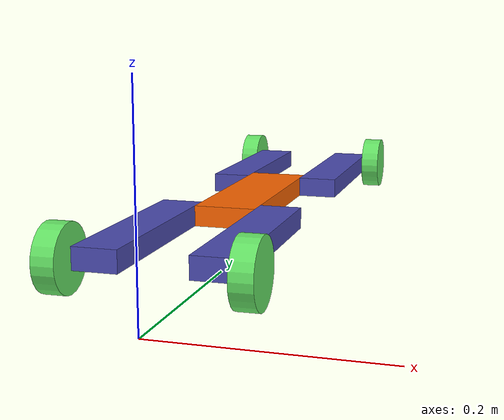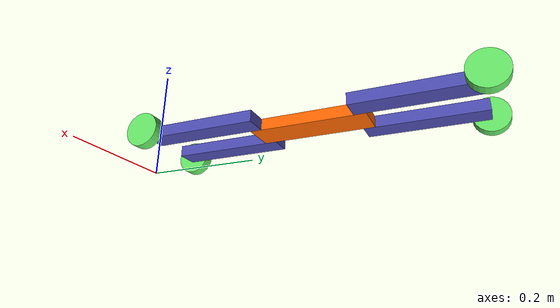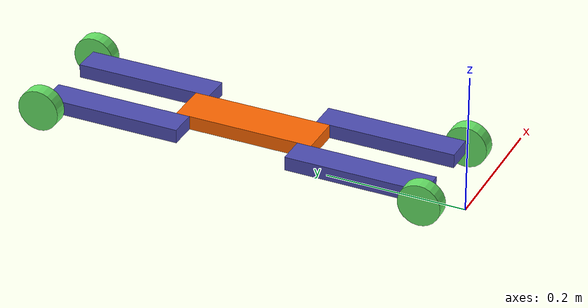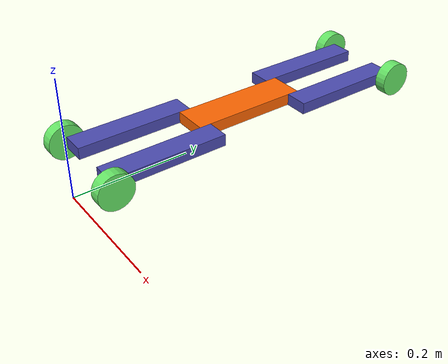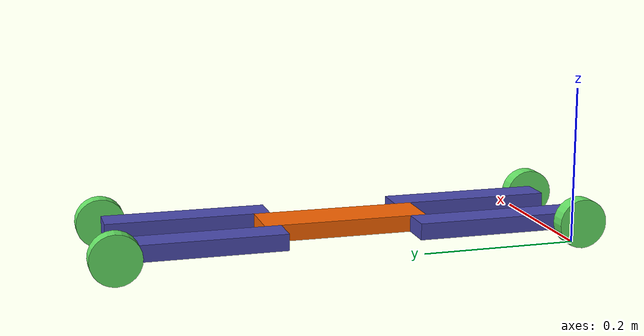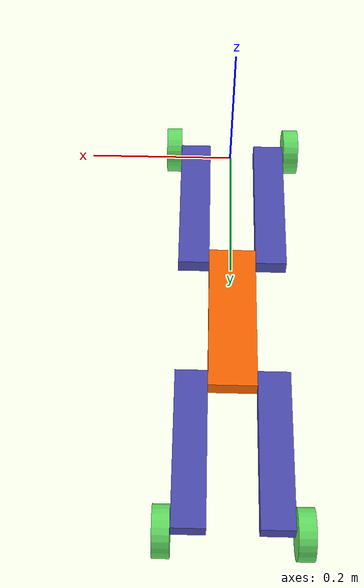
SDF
<?xml version='1.0'?>
<sdf version='1.6'>
  <model name='rover'>
    <pose frame=''>0 0 0.05 -1.570796327 0 0</pose>
    <link name='left_leg'>
      <inertial>
        <mass>0.12</mass>
        <inertia>
          <ixx>0.000404</ixx>
          <ixy>0</ixy>
          <ixz>0</ixz>
          <iyy>0.000416</iyy>
          <iyz>0</iyz>
          <izz>2e-05</izz>
        </inertia>
        <pose frame=''>0 0 0 0 -0 0</pose>
      </inertial>
      <pose frame=''>-0.05 0 0.13 0 -0 0</pose>
      <gravity>1</gravity>
      <self_collide>0</self_collide>
      <kinematic>0</kinematic>
      <enable_wind>0</enable_wind>
      <visual name='visual'>
        <pose frame=''>0 0 0 0 -0 0</pose>
        <geometry>
          <box>
            <size>0.04 0.02 0.2</size>
          </box>
        </geometry>
        <material>
          <lighting>1</lighting>
          <script>
            <uri>file://media/materials/scripts/gazebo.material</uri>
            <name>Gazebo/Grey</name>
          </script>
          <shader type='vertex'>
            <normal_map>__default__</normal_map>
          </shader>
          <ambient>0.3 0.3 0.7 1</ambient>
          <diffuse>0.7 0.7 0.7 1</diffuse>
          <specular>0.01 0.01 0.01 1</specular>
          <emissive>0 0 0 1</emissive>
        </material>
        <transparency>0</transparency>
        <cast_shadows>1</cast_shadows>
      </visual>
      <collision name='collision'>
        <laser_retro>0</laser_retro>
        <max_contacts>10</max_contacts>
        <pose frame=''>0 0 0 0 -0 0</pose>
        <geometry>
          <box>
            <size>0.04 0.02 0.2</size>
          </box>
        </geometry>
        <surface>
          <friction>
            <ode>
              <mu>1</mu>
              <mu2>1</mu2>
              <fdir1>0 0 0</fdir1>
              <slip1>0</slip1>
              <slip2>0</slip2>
            </ode>
            <torsional>
              <coefficient>1</coefficient>
              <patch_radius>0</patch_radius>
              <surface_radius>0</surface_radius>
              <use_patch_radius>1</use_patch_radius>
              <ode>
                <slip>0</slip>
              </ode>
            </torsional>
          </friction>
          <bounce>
            <restitution_coefficient>0</restitution_coefficient>
            <threshold>1e+06</threshold>
          </bounce>
          <contact>
            <collide_without_contact>0</collide_without_contact>
            <collide_without_contact_bitmask>1</collide_without_contact_bitmask>
            <collide_bitmask>1</collide_bitmask>
            <ode>
              <soft_cfm>0</soft_cfm>
              <soft_erp>0.2</soft_erp>
              <kp>1e+13</kp>
              <kd>1</kd>
              <max_vel>0.01</max_vel>
              <min_depth>0</min_depth>
            </ode>
            <bullet>
              <split_impulse>1</split_impulse>
              <split_impulse_penetration_threshold>-0.01</split_impulse_penetration_threshold>
              <soft_cfm>0</soft_cfm>
              <soft_erp>0.2</soft_erp>
              <kp>1e+13</kp>
              <kd>1</kd>
            </bullet>
          </contact>
        </surface>
      </collision>
    </link>
    <link name='body'>
      <battery name="linear_battery">
        <voltage>12.592</voltage>
      </battery>
      <inertial>
        <mass>0.05</mass>
        <inertia>
          <ixx>0.00016833</ixx>
          <ixy>0</ixy>
          <ixz>0</ixz>
          <iyy>0.00018167</iyy>
          <iyz>0</iyz>
          <izz>1.667e-05</izz>
        </inertia>
        <pose frame=''>0 0 0 0 -0 0</pose>
      </inertial>
      <pose frame=''>0 0 0.31 0 0 0</pose>
      <gravity>1</gravity>
      <self_collide>0</self_collide>
      <kinematic>0</kinematic>
      <enable_wind>0</enable_wind>
      <visual name='visual'>
        <pose frame=''>0 0 0 0 -0 0</pose>
        <geometry>
          <box>
            <size>0.06 0.02 0.2</size>
          </box>
        </geometry>
        <material>
          <lighting>1</lighting>
          <script>
            <uri>file://media/materials/scripts/gazebo.material</uri>
            <name>Gazebo/Grey</name>
          </script>
          <shader type='vertex'>
            <normal_map>__default__</normal_map>
          </shader>
          <ambient>1 0.4 0 1</ambient>
          <diffuse>0.7 0.7 0.7 1</diffuse>
          <specular>0.01 0.01 0.01 1</specular>
          <emissive>0 0 0 1</emissive>
        </material>
        <transparency>0</transparency>
        <cast_shadows>1</cast_shadows>
      </visual>
      <collision name='collision'>
        <laser_retro>0</laser_retro>
        <max_contacts>10</max_contacts>
        <pose frame=''>0 0 0 0 -0 0</pose>
        <geometry>
          <box>
            <size>0.06 0.02 0.2</size>
          </box>
        </geometry>
        <surface>
          <friction>
            <ode>
              <mu>1</mu>
              <mu2>1</mu2>
              <fdir1>0 0 0</fdir1>
              <slip1>0</slip1>
              <slip2>0</slip2>
            </ode>
            <torsional>
              <coefficient>1</coefficient>
              <patch_radius>0</patch_radius>
              <surface_radius>0</surface_radius>
              <use_patch_radius>1</use_patch_radius>
              <ode>
                <slip>0</slip>
              </ode>
            </torsional>
          </friction>
          <bounce>
            <restitution_coefficient>0</restitution_coefficient>
            <threshold>1e+06</threshold>
          </bounce>
          <contact>
            <collide_without_contact>0</collide_without_contact>
            <collide_without_contact_bitmask>1</collide_without_contact_bitmask>
            <collide_bitmask>1</collide_bitmask>
            <ode>
              <soft_cfm>0</soft_cfm>
              <soft_erp>0.2</soft_erp>
              <kp>1e+13</kp>
              <kd>1</kd>
              <max_vel>0.01</max_vel>
              <min_depth>0</min_depth>
            </ode>
            <bullet>
              <split_impulse>1</split_impulse>
              <split_impulse_penetration_threshold>-0.01</split_impulse_penetration_threshold>
              <soft_cfm>0</soft_cfm>
              <soft_erp>0.2</soft_erp>
              <kp>1e+13</kp>
              <kd>1</kd>
            </bullet>
          </contact>
        </surface>
      </collision>
    </link>
    <link name='left_arm'>
      <inertial>
        <mass>0.12</mass>
        <inertia>
          <ixx>0.000404</ixx>
          <ixy>0</ixy>
          <ixz>0</ixz>
          <iyy>0.000416</iyy>
          <iyz>0</iyz>
          <izz>2e-05</izz>
        </inertia>
        <pose frame=''>0 0 0 0 -0 0</pose>
      </inertial>
      <pose frame=''>-0.05 0 0.49 0 -0 0</pose>
      <gravity>1</gravity>
      <self_collide>0</self_collide>
      <kinematic>0</kinematic>
      <enable_wind>0</enable_wind>
      <visual name='visual'>
        <pose frame=''>0 0 0 0 -0 0</pose>
        <geometry>
          <box>
            <size>0.04 0.02 0.2</size>
          </box>
        </geometry>
        <material>
          <lighting>1</lighting>
          <script>
            <uri>file://media/materials/scripts/gazebo.material</uri>
            <name>Gazebo/Grey</name>
          </script>
          <shader type='vertex'>
            <normal_map>__default__</normal_map>
          </shader>
          <ambient>0.3 0.3 0.7 1</ambient>
          <diffuse>0.7 0.7 0.7 1</diffuse>
          <specular>0.01 0.01 0.01 1</specular>
          <emissive>0 0 0 1</emissive>
        </material>
        <transparency>0</transparency>
        <cast_shadows>1</cast_shadows>
      </visual>
      <collision name='collision'>
        <laser_retro>0</laser_retro>
        <max_contacts>10</max_contacts>
        <pose frame=''>0 0 0 0 -0 0</pose>
        <geometry>
          <box>
            <size>0.04 0.02 0.2</size>
          </box>
        </geometry>
        <surface>
          <friction>
            <ode>
              <mu>1</mu>
              <mu2>1</mu2>
              <fdir1>0 0 0</fdir1>
              <slip1>0</slip1>
              <slip2>0</slip2>
            </ode>
            <torsional>
              <coefficient>1</coefficient>
              <patch_radius>0</patch_radius>
              <surface_radius>0</surface_radius>
              <use_patch_radius>1</use_patch_radius>
              <ode>
                <slip>0</slip>
              </ode>
            </torsional>
          </friction>
          <bounce>
            <restitution_coefficient>0</restitution_coefficient>
            <threshold>1e+06</threshold>
          </bounce>
          <contact>
            <collide_without_contact>0</collide_without_contact>
            <collide_without_contact_bitmask>1</collide_without_contact_bitmask>
            <collide_bitmask>1</collide_bitmask>
            <ode>
              <soft_cfm>0</soft_cfm>
              <soft_erp>0.2</soft_erp>
              <kp>1e+13</kp>
              <kd>1</kd>
              <max_vel>0.01</max_vel>
              <min_depth>0</min_depth>
            </ode>
            <bullet>
              <split_impulse>1</split_impulse>
              <split_impulse_penetration_threshold>-0.01</split_impulse_penetration_threshold>
              <soft_cfm>0</soft_cfm>
              <soft_erp>0.2</soft_erp>
              <kp>1e+13</kp>
              <kd>1</kd>
            </bullet>
          </contact>
        </surface>
      </collision>
    </link>
    <link name='left_arm_wheel'>
      <inertial>
        <mass>0.02</mass>
        <inertia>
          <ixx>5.17e-06</ixx>
          <ixy>0</ixy>
          <ixz>0</ixz>
          <iyy>5.17e-06</iyy>
          <iyz>0</iyz>
          <izz>9e-06</izz>
        </inertia>
        <pose frame=''>0 0 0 0 -0 0</pose>
      </inertial>
      <pose frame=''>-0.08 0 0.59 0 -0 0</pose>
      <gravity>1</gravity>
      <self_collide>1</self_collide>
      <kinematic>0</kinematic>
      <enable_wind>0</enable_wind>
      <visual name='visual'>
        <pose frame=''>0 0 0 0 1.5608 0</pose>
        <geometry>
          <cylinder>
            <radius>0.03</radius>
            <length>0.02</length>
          </cylinder>
        </geometry>
        <material>
          <lighting>1</lighting>
          <script>
            <uri>file://media/materials/scripts/gazebo.material</uri>
            <name>Gazebo/Grey</name>
          </script>
          <shader type='vertex'>
            <normal_map>__default__</normal_map>
          </shader>
          <ambient>0.3 0.3 0.3 1</ambient>
          <diffuse>0.4 0.9 0.4 1</diffuse>
          <specular>0.01 0.01 0.01 1</specular>
          <emissive>0 0 0 1</emissive>
        </material>
        <transparency>0</transparency>
        <cast_shadows>1</cast_shadows>
      </visual>
      <collision name='collision'>
        <laser_retro>0</laser_retro>
        <max_contacts>10</max_contacts>
        <pose frame=''>0 0 0 0 1.5608 0</pose>
        <geometry>
          <cylinder>
            <radius>0.03</radius>
            <length>0.02</length>
          </cylinder>
        </geometry>
        <surface>
          <friction>
            <ode>
              <mu>1</mu>
              <mu2>1</mu2>
              <fdir1>0 0 0</fdir1>
              <slip1>0</slip1>
              <slip2>0</slip2>
            </ode>
            <torsional>
              <coefficient>1</coefficient>
              <patch_radius>0</patch_radius>
              <surface_radius>0</surface_radius>
              <use_patch_radius>1</use_patch_radius>
              <ode>
                <slip>0</slip>
              </ode>
            </torsional>
          </friction>
          <bounce>
            <restitution_coefficient>0</restitution_coefficient>
            <threshold>1e+06</threshold>
          </bounce>
          <contact>
            <collide_without_contact>0</collide_without_contact>
            <collide_without_contact_bitmask>1</collide_without_contact_bitmask>
            <collide_bitmask>1</collide_bitmask>
            <ode>
              <soft_cfm>0</soft_cfm>
              <soft_erp>0.2</soft_erp>
              <kp>1e+13</kp>
              <kd>1</kd>
              <max_vel>0.01</max_vel>
              <min_depth>0</min_depth>
            </ode>
            <bullet>
              <split_impulse>1</split_impulse>
              <split_impulse_penetration_threshold>-0.01</split_impulse_penetration_threshold>
              <soft_cfm>0</soft_cfm>
              <soft_erp>0.2</soft_erp>
              <kp>1e+13</kp>
              <kd>1</kd>
            </bullet>
          </contact>
        </surface>
      </collision>
    </link>
    <link name='left_leg_wheel'>
      <inertial>
        <mass>0.02</mass>
        <inertia>
          <ixx>5.17e-06</ixx>
          <ixy>0</ixy>
          <ixz>0</ixz>
          <iyy>5.17e-06</iyy>
          <iyz>0</iyz>
          <izz>9e-06</izz>
        </inertia>
        <pose frame=''>0 0 0 0 -0 0</pose>
      </inertial>
      <pose frame=''>-0.08 0 0.03 0 -0 0</pose>
      <gravity>1</gravity>
      <self_collide>1</self_collide>
      <kinematic>0</kinematic>
      <enable_wind>0</enable_wind>
      <visual name='visual'>
        <pose frame=''>0 0 0 0 1.5608 0</pose>
        <geometry>
          <cylinder>
            <radius>0.03</radius>
            <length>0.02</length>
          </cylinder>
        </geometry>
        <material>
          <lighting>1</lighting>
          <script>
            <uri>file://media/materials/scripts/gazebo.material</uri>
            <name>Gazebo/Grey</name>
          </script>
          <shader type='vertex'>
            <normal_map>__default__</normal_map>
          </shader>
          <ambient>0.3 0.3 0.3 1</ambient>
          <diffuse>0.4 0.9 0.4 1</diffuse>
          <specular>0.01 0.01 0.01 1</specular>
          <emissive>0 0 0 1</emissive>
        </material>
        <transparency>0</transparency>
        <cast_shadows>1</cast_shadows>
      </visual>
      <collision name='collision'>
        <laser_retro>0</laser_retro>
        <max_contacts>10</max_contacts>
        <pose frame=''>0 0 0 0 1.5608 0</pose>
        <geometry>
          <cylinder>
            <radius>0.03</radius>
            <length>0.02</length>
          </cylinder>
        </geometry>
        <surface>
          <friction>
            <ode>
              <mu>1</mu>
              <mu2>1</mu2>
              <fdir1>0 0 0</fdir1>
              <slip1>0</slip1>
              <slip2>0</slip2>
            </ode>
            <torsional>
              <coefficient>1</coefficient>
              <patch_radius>0</patch_radius>
              <surface_radius>0</surface_radius>
              <use_patch_radius>1</use_patch_radius>
              <ode>
                <slip>0</slip>
              </ode>
            </torsional>
          </friction>
          <bounce>
            <restitution_coefficient>0</restitution_coefficient>
            <threshold>1e+06</threshold>
          </bounce>
          <contact>
            <collide_without_contact>0</collide_without_contact>
            <collide_without_contact_bitmask>1</collide_without_contact_bitmask>
            <collide_bitmask>1</collide_bitmask>
            <ode>
              <soft_cfm>0</soft_cfm>
              <soft_erp>0.2</soft_erp>
              <kp>1e+13</kp>
              <kd>1</kd>
              <max_vel>0.01</max_vel>
              <min_depth>0</min_depth>
            </ode>
            <bullet>
              <split_impulse>1</split_impulse>
              <split_impulse_penetration_threshold>-0.01</split_impulse_penetration_threshold>
              <soft_cfm>0</soft_cfm>
              <soft_erp>0.2</soft_erp>
              <kp>1e+13</kp>
              <kd>1</kd>
            </bullet>
          </contact>
        </surface>
      </collision>
    </link>
    <link name='right_arm'>
      <inertial>
        <mass>0.12</mass>
        <inertia>
          <ixx>0.000404</ixx>
          <ixy>0</ixy>
          <ixz>0</ixz>
          <iyy>0.000416</iyy>
          <iyz>0</iyz>
          <izz>2e-05</izz>
        </inertia>
        <pose frame=''>0 0 0 0 -0 0</pose>
      </inertial>
      <pose frame=''>0.05 0 0.49 0 -0 0</pose>
      <gravity>1</gravity>
      <self_collide>0</self_collide>
      <kinematic>0</kinematic>
      <enable_wind>0</enable_wind>
      <visual name='visual'>
        <pose frame=''>0 0 0 0 -0 0</pose>
        <geometry>
          <box>
            <size>0.04 0.02 0.2</size>
          </box>
        </geometry>
        <material>
          <lighting>1</lighting>
          <script>
            <uri>file://media/materials/scripts/gazebo.material</uri>
            <name>Gazebo/Grey</name>
          </script>
          <shader type='vertex'>
            <normal_map>__default__</normal_map>
          </shader>
          <ambient>0.3 0.3 0.7 1</ambient>
          <diffuse>0.7 0.7 0.7 1</diffuse>
          <specular>0.01 0.01 0.01 1</specular>
          <emissive>0 0 0 1</emissive>
        </material>
        <transparency>0</transparency>
        <cast_shadows>1</cast_shadows>
      </visual>
      <collision name='collision'>
        <laser_retro>0</laser_retro>
        <max_contacts>10</max_contacts>
        <pose frame=''>0 0 0 0 -0 0</pose>
        <geometry>
          <box>
            <size>0.04 0.02 0.2</size>
          </box>
        </geometry>
        <surface>
          <friction>
            <ode>
              <mu>1</mu>
              <mu2>1</mu2>
              <fdir1>0 0 0</fdir1>
              <slip1>0</slip1>
              <slip2>0</slip2>
            </ode>
            <torsional>
              <coefficient>1</coefficient>
              <patch_radius>0</patch_radius>
              <surface_radius>0</surface_radius>
              <use_patch_radius>1</use_patch_radius>
              <ode>
                <slip>0</slip>
              </ode>
            </torsional>
          </friction>
          <bounce>
            <restitution_coefficient>0</restitution_coefficient>
            <threshold>1e+06</threshold>
          </bounce>
          <contact>
            <collide_without_contact>0</collide_without_contact>
            <collide_without_contact_bitmask>1</collide_without_contact_bitmask>
            <collide_bitmask>1</collide_bitmask>
            <ode>
              <soft_cfm>0</soft_cfm>
              <soft_erp>0.2</soft_erp>
              <kp>1e+13</kp>
              <kd>1</kd>
              <max_vel>0.01</max_vel>
              <min_depth>0</min_depth>
            </ode>
            <bullet>
              <split_impulse>1</split_impulse>
              <split_impulse_penetration_threshold>-0.01</split_impulse_penetration_threshold>
              <soft_cfm>0</soft_cfm>
              <soft_erp>0.2</soft_erp>
              <kp>1e+13</kp>
              <kd>1</kd>
            </bullet>
          </contact>
        </surface>
      </collision>
    </link>
    <link name='right_arm_wheel'>
      <inertial>
        <mass>0.02</mass>
        <inertia>
          <ixx>5.17e-06</ixx>
          <ixy>0</ixy>
          <ixz>0</ixz>
          <iyy>5.17e-06</iyy>
          <iyz>0</iyz>
          <izz>9e-06</izz>
        </inertia>
        <pose frame=''>0 0 0 0 -0 0</pose>
      </inertial>
      <pose frame=''>0.08 0 0.59 0 -0 0</pose>
      <gravity>1</gravity>
      <self_collide>1</self_collide>
      <kinematic>0</kinematic>
      <enable_wind>0</enable_wind>
      <visual name='visual'>
        <pose frame=''>0 0 0 0 1.5608 0</pose>
        <geometry>
          <cylinder>
            <radius>0.03</radius>
            <length>0.02</length>
          </cylinder>
        </geometry>
        <material>
          <lighting>1</lighting>
          <script>
            <uri>file://media/materials/scripts/gazebo.material</uri>
            <name>Gazebo/Grey</name>
          </script>
          <shader type='vertex'>
            <normal_map>__default__</normal_map>
          </shader>
          <ambient>0.3 0.3 0.3 1</ambient>
          <diffuse>0.4 0.9 0.4 1</diffuse>
          <specular>0.01 0.01 0.01 1</specular>
          <emissive>0 0 0 1</emissive>
        </material>
        <transparency>0</transparency>
        <cast_shadows>1</cast_shadows>
      </visual>
      <collision name='collision'>
        <laser_retro>0</laser_retro>
        <max_contacts>10</max_contacts>
        <pose frame=''>0 0 0 0 1.5608 0</pose>
        <geometry>
          <cylinder>
            <radius>0.03</radius>
            <length>0.02</length>
          </cylinder>
        </geometry>
        <surface>
          <friction>
            <ode>
              <mu>1</mu>
              <mu2>1</mu2>
              <fdir1>0 0 0</fdir1>
              <slip1>0</slip1>
              <slip2>0</slip2>
            </ode>
            <torsional>
              <coefficient>1</coefficient>
              <patch_radius>0</patch_radius>
              <surface_radius>0</surface_radius>
              <use_patch_radius>1</use_patch_radius>
              <ode>
                <slip>0</slip>
              </ode>
            </torsional>
          </friction>
          <bounce>
            <restitution_coefficient>0</restitution_coefficient>
            <threshold>1e+06</threshold>
          </bounce>
          <contact>
            <collide_without_contact>0</collide_without_contact>
            <collide_without_contact_bitmask>1</collide_without_contact_bitmask>
            <collide_bitmask>1</collide_bitmask>
            <ode>
              <soft_cfm>0</soft_cfm>
              <soft_erp>0.2</soft_erp>
              <kp>1e+13</kp>
              <kd>1</kd>
              <max_vel>0.01</max_vel>
              <min_depth>0</min_depth>
            </ode>
            <bullet>
              <split_impulse>1</split_impulse>
              <split_impulse_penetration_threshold>-0.01</split_impulse_penetration_threshold>
              <soft_cfm>0</soft_cfm>
              <soft_erp>0.2</soft_erp>
              <kp>1e+13</kp>
              <kd>1</kd>
            </bullet>
          </contact>
        </surface>
      </collision>
    </link>
    <link name='right_leg'>
      <inertial>
        <mass>0.12</mass>
        <inertia>
          <ixx>0.000404</ixx>
          <ixy>0</ixy>
          <ixz>0</ixz>
          <iyy>0.000416</iyy>
          <iyz>0</iyz>
          <izz>2e-05</izz>
        </inertia>
        <pose frame=''>0 0 0 0 -0 0</pose>
      </inertial>
      <pose frame=''>0.05 0 0.13 0 -0 0</pose>
      <gravity>1</gravity>
      <self_collide>0</self_collide>
      <kinematic>0</kinematic>
      <enable_wind>0</enable_wind>
      <visual name='visual'>
        <pose frame=''>0 0 0 0 -0 0</pose>
        <geometry>
          <box>
            <size>0.04 0.02 0.2</size>
          </box>
        </geometry>
        <material>
          <lighting>1</lighting>
          <script>
            <uri>file://media/materials/scripts/gazebo.material</uri>
            <name>Gazebo/Grey</name>
          </script>
          <shader type='vertex'>
            <normal_map>__default__</normal_map>
          </shader>
          <ambient>0.3 0.3 0.7 1</ambient>
          <diffuse>0.7 0.7 0.7 1</diffuse>
          <specular>0.01 0.01 0.01 1</specular>
          <emissive>0 0 0 1</emissive>
        </material>
        <transparency>0</transparency>
        <cast_shadows>1</cast_shadows>
      </visual>
      <collision name='collision'>
        <laser_retro>0</laser_retro>
        <max_contacts>10</max_contacts>
        <pose frame=''>0 0 0 0 -0 0</pose>
        <geometry>
          <box>
            <size>0.04 0.02 0.2</size>
          </box>
        </geometry>
        <surface>
          <friction>
            <ode>
              <mu>1</mu>
              <mu2>1</mu2>
              <fdir1>0 0 0</fdir1>
              <slip1>0</slip1>
              <slip2>0</slip2>
            </ode>
            <torsional>
              <coefficient>1</coefficient>
              <patch_radius>0</patch_radius>
              <surface_radius>0</surface_radius>
              <use_patch_radius>1</use_patch_radius>
              <ode>
                <slip>0</slip>
              </ode>
            </torsional>
          </friction>
          <bounce>
            <restitution_coefficient>0</restitution_coefficient>
            <threshold>1e+06</threshold>
          </bounce>
          <contact>
            <collide_without_contact>0</collide_without_contact>
            <collide_without_contact_bitmask>1</collide_without_contact_bitmask>
            <collide_bitmask>1</collide_bitmask>
            <ode>
              <soft_cfm>0</soft_cfm>
              <soft_erp>0.2</soft_erp>
              <kp>1e+13</kp>
              <kd>1</kd>
              <max_vel>0.01</max_vel>
              <min_depth>0</min_depth>
            </ode>
            <bullet>
              <split_impulse>1</split_impulse>
              <split_impulse_penetration_threshold>-0.01</split_impulse_penetration_threshold>
              <soft_cfm>0</soft_cfm>
              <soft_erp>0.2</soft_erp>
              <kp>1e+13</kp>
              <kd>1</kd>
            </bullet>
          </contact>
        </surface>
      </collision>
    </link>
    <link name='right_leg_wheel'>
      <inertial>
        <mass>0.02</mass>
        <inertia>
          <ixx>5.17e-06</ixx>
          <ixy>0</ixy>
          <ixz>0</ixz>
          <iyy>5.17e-06</iyy>
          <iyz>0</iyz>
          <izz>9e-06</izz>
        </inertia>
        <pose frame=''>0 0 0 0 -0 0</pose>
      </inertial>
      <pose frame=''>0.08 0 0.03 0 -0 0</pose>
      <gravity>1</gravity>
      <self_collide>1</self_collide>
      <kinematic>0</kinematic>
      <enable_wind>0</enable_wind>
      <visual name='visual'>
        <pose frame=''>0 0 0 0 1.5608 0</pose>
        <geometry>
          <cylinder>
            <radius>0.03</radius>
            <length>0.02</length>
          </cylinder>
        </geometry>
        <material>
          <lighting>1</lighting>
          <script>
            <uri>file://media/materials/scripts/gazebo.material</uri>
            <name>Gazebo/Grey</name>
          </script>
          <shader type='vertex'>
            <normal_map>__default__</normal_map>
          </shader>
          <ambient>0.3 0.3 0.3 1</ambient>
          <diffuse>0.4 0.9 0.4 1</diffuse>
          <specular>0.01 0.01 0.01 1</specular>
          <emissive>0 0 0 1</emissive>
        </material>
        <transparency>0</transparency>
        <cast_shadows>1</cast_shadows>
      </visual>
      <collision name='collision'>
        <laser_retro>0</laser_retro>
        <max_contacts>10</max_contacts>
        <pose frame=''>0 0 0 0 1.5608 0</pose>
        <geometry>
          <cylinder>
            <radius>0.03</radius>
            <length>0.02</length>
          </cylinder>
        </geometry>
        <surface>
          <friction>
            <ode>
              <mu>1</mu>
              <mu2>1</mu2>
              <fdir1>0 0 0</fdir1>
              <slip1>0</slip1>
              <slip2>0</slip2>
            </ode>
            <torsional>
              <coefficient>1</coefficient>
              <patch_radius>0</patch_radius>
              <surface_radius>0</surface_radius>
              <use_patch_radius>1</use_patch_radius>
              <ode>
                <slip>0</slip>
              </ode>
            </torsional>
          </friction>
          <bounce>
            <restitution_coefficient>0</restitution_coefficient>
            <threshold>1e+06</threshold>
          </bounce>
          <contact>
            <collide_without_contact>0</collide_without_contact>
            <collide_without_contact_bitmask>1</collide_without_contact_bitmask>
            <collide_bitmask>1</collide_bitmask>
            <ode>
              <soft_cfm>0</soft_cfm>
              <soft_erp>0.2</soft_erp>
              <kp>1e+13</kp>
              <kd>1</kd>
              <max_vel>0.01</max_vel>
              <min_depth>0</min_depth>
            </ode>
            <bullet>
              <split_impulse>1</split_impulse>
              <split_impulse_penetration_threshold>-0.01</split_impulse_penetration_threshold>
              <soft_cfm>0</soft_cfm>
              <soft_erp>0.2</soft_erp>
              <kp>1e+13</kp>
              <kd>1</kd>
            </bullet>
          </contact>
        </surface>
      </collision>
    </link>
    <joint name='j_left_arm' type='revolute'>
      <parent>body</parent>
      <child>left_arm</child>
      <pose frame=''>0 0 -0.09 0 -0 0</pose>
      <axis>
        <xyz>1 0 0</xyz>
        <use_parent_model_frame>0</use_parent_model_frame>
        <limit>
          <lower>-1.79769e+308</lower>
          <upper>1.79769e+308</upper>
          <effort>-1</effort>
          <velocity>-1</velocity>
        </limit>
        <dynamics>
          <spring_reference>0</spring_reference>
          <spring_stiffness>0</spring_stiffness>
          <damping>0</damping>
          <friction>0</friction>
        </dynamics>
      </axis>
      <physics>
        <ode>
          <limit>
            <cfm>0</cfm>
            <erp>0.2</erp>
          </limit>
          <suspension>
            <cfm>0</cfm>
            <erp>0.2</erp>
          </suspension>
        </ode>
      </physics>
    </joint>
    <joint name='j_left_arm_wheel' type='revolute'>
      <parent>left_arm</parent>
      <child>left_arm_wheel</child>
      <pose frame=''>0 0 0 0 -0 0</pose>
      <axis>
        <xyz>1 0 0</xyz>
        <use_parent_model_frame>0</use_parent_model_frame>
        <limit>
          <lower>-1.79769e+308</lower>
          <upper>1.79769e+308</upper>
          <effort>-1</effort>
          <velocity>-1</velocity>
        </limit>
        <dynamics>
          <spring_reference>0</spring_reference>
          <spring_stiffness>0</spring_stiffness>
          <damping>0</damping>
          <friction>0</friction>
        </dynamics>
      </axis>
      <physics>
        <ode>
          <limit>
            <cfm>0</cfm>
            <erp>0.2</erp>
          </limit>
          <suspension>
            <cfm>0</cfm>
            <erp>0.2</erp>
          </suspension>
        </ode>
      </physics>
    </joint>
    <joint name='j_left_leg' type='revolute'>
      <parent>body</parent>
      <child>left_leg</child>
      <pose frame=''>0 0 0.09 0 -0 0</pose>
      <axis>
        <xyz>1 0 0</xyz>
        <use_parent_model_frame>0</use_parent_model_frame>
        <limit>
          <lower>-1.79769e+308</lower>
          <upper>1.79769e+308</upper>
          <effort>-1</effort>
          <velocity>-1</velocity>
        </limit>
        <dynamics>
          <spring_reference>0</spring_reference>
          <spring_stiffness>0</spring_stiffness>
          <damping>0</damping>
          <friction>0</friction>
        </dynamics>
      </axis>
      <physics>
        <ode>
          <limit>
            <cfm>0</cfm>
            <erp>0.2</erp>
          </limit>
          <suspension>
            <cfm>0</cfm>
            <erp>0.2</erp>
          </suspension>
        </ode>
      </physics>
    </joint>
    <joint name='j_left_leg_wheel' type='revolute'>
      <parent>left_leg</parent>
      <child>left_leg_wheel</child>
      <pose frame=''>0 0 0 0 -0 0</pose>
      <axis>
        <xyz>1 0 0</xyz>
        <use_parent_model_frame>0</use_parent_model_frame>
        <limit>
          <lower>-1.79769e+308</lower>
          <upper>1.79769e+308</upper>
          <effort>-1</effort>
          <velocity>-1</velocity>
        </limit>
        <dynamics>
          <spring_reference>0</spring_reference>
          <spring_stiffness>0</spring_stiffness>
          <damping>0</damping>
          <friction>0</friction>
        </dynamics>
      </axis>
      <physics>
        <ode>
          <limit>
            <cfm>0</cfm>
            <erp>0.2</erp>
          </limit>
          <suspension>
            <cfm>0</cfm>
            <erp>0.2</erp>
          </suspension>
        </ode>
      </physics>
    </joint>
    <joint name='j_right_arm' type='revolute'>
      <parent>body</parent>
      <child>right_arm</child>
      <pose frame=''>0 0 -0.09 0 -0 0</pose>
      <axis>
        <xyz>1 0 0</xyz>
        <use_parent_model_frame>0</use_parent_model_frame>
        <limit>
          <lower>-1.79769e+308</lower>
          <upper>1.79769e+308</upper>
          <effort>-1</effort>
          <velocity>-1</velocity>
        </limit>
        <dynamics>
          <spring_reference>0</spring_reference>
          <spring_stiffness>0</spring_stiffness>
          <damping>0</damping>
          <friction>0</friction>
        </dynamics>
      </axis>
      <physics>
        <ode>
          <limit>
            <cfm>0</cfm>
            <erp>0.2</erp>
          </limit>
          <suspension>
            <cfm>0</cfm>
            <erp>0.2</erp>
          </suspension>
        </ode>
      </physics>
    </joint>
    <joint name='j_right_arm_wheel' type='revolute'>
      <parent>right_arm</parent>
      <child>right_arm_wheel</child>
      <pose frame=''>0 0 0 0 -0 0</pose>
      <axis>
        <xyz>1 0 0</xyz>
        <use_parent_model_frame>0</use_parent_model_frame>
        <limit>
          <lower>-1.79769e+308</lower>
          <upper>1.79769e+308</upper>
          <effort>-1</effort>
          <velocity>-1</velocity>
        </limit>
        <dynamics>
          <spring_reference>0</spring_reference>
          <spring_stiffness>0</spring_stiffness>
          <damping>0</damping>
          <friction>0</friction>
        </dynamics>
      </axis>
      <physics>
        <ode>
          <limit>
            <cfm>0</cfm>
            <erp>0.2</erp>
          </limit>
          <suspension>
            <cfm>0</cfm>
            <erp>0.2</erp>
          </suspension>
        </ode>
      </physics>
    </joint>
    <joint name='j_right_leg' type='revolute'>
      <parent>body</parent>
      <child>right_leg</child>
      <pose frame=''>0 0 0.09 0 -0 0</pose>
      <axis>
        <xyz>1 0 0</xyz>
        <use_parent_model_frame>0</use_parent_model_frame>
        <limit>
          <lower>-1.79769e+308</lower>
          <upper>1.79769e+308</upper>
          <effort>-1</effort>
          <velocity>-1</velocity>
        </limit>
        <dynamics>
          <spring_reference>0</spring_reference>
          <spring_stiffness>0</spring_stiffness>
          <damping>0</damping>
          <friction>0</friction>
        </dynamics>
      </axis>
      <physics>
        <ode>
          <limit>
            <cfm>0</cfm>
            <erp>0.2</erp>
          </limit>
          <suspension>
            <cfm>0</cfm>
            <erp>0.2</erp>
          </suspension>
        </ode>
      </physics>
    </joint>
    <joint name='j_right_leg_wheel' type='revolute'>
      <parent>right_leg</parent>
      <child>right_leg_wheel</child>
      <pose frame=''>0 0 0 0 -0 0</pose>
      <axis>
        <xyz>1 0 0</xyz>
        <use_parent_model_frame>0</use_parent_model_frame>
        <limit>
          <lower>-1.79769e+308</lower>
          <upper>1.79769e+308</upper>
          <effort>-1</effort>
          <velocity>-1</velocity>
        </limit>
        <dynamics>
          <spring_reference>0</spring_reference>
          <spring_stiffness>0</spring_stiffness>
          <damping>0</damping>
          <friction>0</friction>
        </dynamics>
      </axis>
      <physics>
        <ode>
          <limit>
            <cfm>0</cfm>
            <erp>0.2</erp>
          </limit>
          <suspension>
            <cfm>0</cfm>
            <erp>0.2</erp>
          </suspension>
        </ode>
      </physics>
    </joint>
    <static>0</static>
    <allow_auto_disable>1</allow_auto_disable>
    <plugin name='libjoystick_control' filename='libjoystick_control.so'>
      <ArmsServo>AX12A</ArmsServo>
      <WheelsMotor>AX-GM2212-72Kv</WheelsMotor>
      <link_name>body</link_name>
      <battery_name>linear_battery</battery_name>
      <power_load>6.6</power_load>
      <open_circuit_voltage_constant_coef>12.694</open_circuit_voltage_constant_coef>
      <open_circuit_voltage_linear_coef>-3.1424</open_circuit_voltage_linear_coef>
      <initial_charge>1.1665</initial_charge>
      <capacity>1.2009</capacity>
      <resistance>0.061523</resistance>
      <smooth_current_tau>1.9499</smooth_current_tau>
    </plugin>
  </model>
</sdf>
